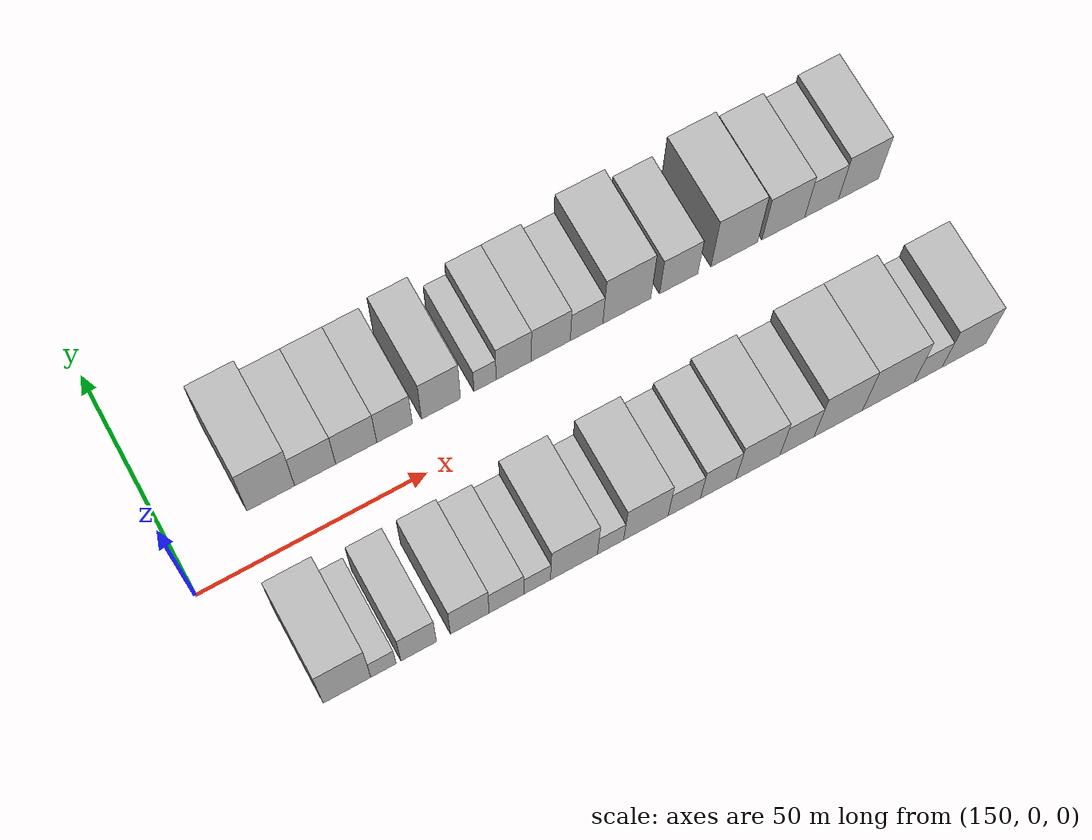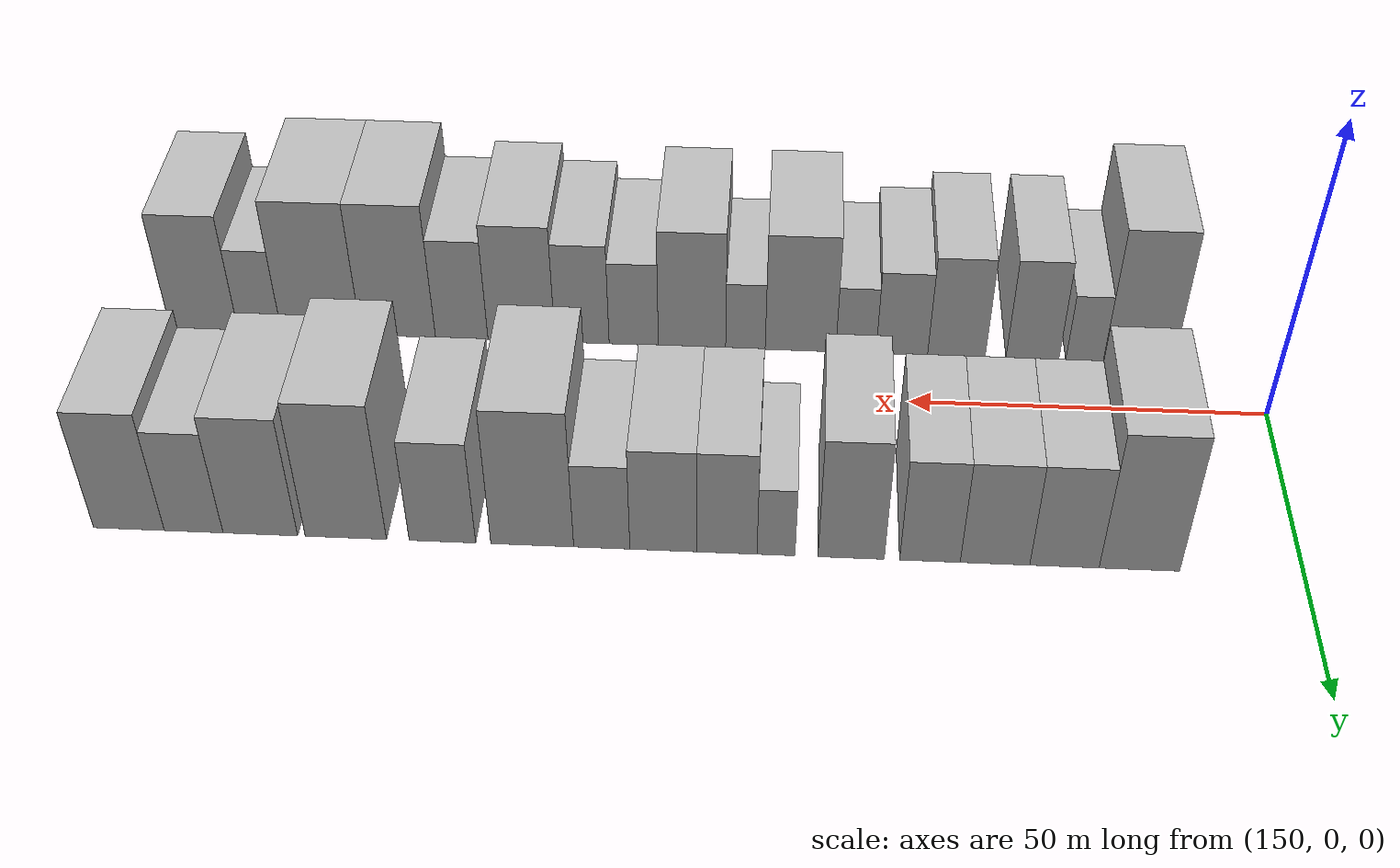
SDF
<sdf version="1.6">
 <world name="default">
  <model name="building_16">
   <static>1</static>
   <pose>171.1718 20.0000 0 0.000000 0.000000 1.570796</pose>
   <link name="link">
    <pose>0 0 12.00 0 0 0</pose>
    <collision name="collision"><geometry><box><size>20.0000 10.3281 24.0000</size></box></geometry></collision>
    <visual name="visual">
     <cast_shadows>0</cast_shadows>
     <geometry><box><size>20.0000 10.3281 24.0000</size></box></geometry>
     <material>
      <script>
       <uri>model://HANNAS_wall/materials/scripts</uri>
       <uri>model://HANNAS_wall/materials/textures</uri>
       <name>vrc/HANNAS_wall</name>
      </script>
     </material>
    </visual>
   </link>
  </model>
  <model name="building_17">
   <static>1</static>
   <pose>180.7952 20.0000 0 0.000000 0.000000 1.570796</pose>
   <link name="link">
    <pose>0 0 9.00 0 0 0</pose>
    <collision name="collision"><geometry><box><size>20.0000 8.9186 18.0000</size></box></geometry></collision>
    <visual name="visual">
     <cast_shadows>0</cast_shadows>
     <geometry><box><size>20.0000 8.9186 18.0000</size></box></geometry>
     <material>
      <script>
       <uri>model://HANNAS_wall/materials/scripts</uri>
       <uri>model://HANNAS_wall/materials/textures</uri>
       <name>vrc/HANNAS_wall</name>
      </script>
     </material>
    </visual>
   </link>
  </model>
  <model name="building_18">
   <static>1</static>
   <pose>189.7408 20.0000 0 0.000000 0.000000 1.570796</pose>
   <link name="link">
    <pose>0 0 9.00 0 0 0</pose>
    <collision name="collision"><geometry><box><size>20.0000 8.9726 18.0000</size></box></geometry></collision>
    <visual name="visual">
     <cast_shadows>0</cast_shadows>
     <geometry><box><size>20.0000 8.9726 18.0000</size></box></geometry>
     <material>
      <script>
       <uri>model://HANNAS_wall/materials/scripts</uri>
       <uri>model://HANNAS_wall/materials/textures</uri>
       <name>vrc/HANNAS_wall</name>
      </script>
     </material>
    </visual>
   </link>
  </model>
  <model name="building_19">
   <static>1</static>
   <pose>198.1437 20.0000 0 0.000000 0.000000 1.570796</pose>
   <link name="link">
    <pose>0 0 9.00 0 0 0</pose>
    <collision name="collision"><geometry><box><size>20.0000 7.8333 18.0000</size></box></geometry></collision>
    <visual name="visual">
     <cast_shadows>0</cast_shadows>
     <geometry><box><size>20.0000 7.8333 18.0000</size></box></geometry>
     <material>
      <script>
       <uri>model://HANNAS_wall/materials/scripts</uri>
       <uri>model://HANNAS_wall/materials/textures</uri>
       <name>vrc/HANNAS_wall</name>
      </script>
     </material>
    </visual>
   </link>
  </model>
  <model name="building_20">
   <static>1</static>
   <pose>208.3549 20.0000 0 0.000000 0.000000 1.570796</pose>
   <link name="link">
    <pose>0 0 10.50 0 0 0</pose>
    <collision name="collision"><geometry><box><size>20.0000 8.5891 21.0000</size></box></geometry></collision>
    <visual name="visual">
     <cast_shadows>0</cast_shadows>
     <geometry><box><size>20.0000 8.5891 21.0000</size></box></geometry>
     <material>
      <script>
       <uri>model://HANNAS_wall/materials/scripts</uri>
       <uri>model://HANNAS_wall/materials/textures</uri>
       <name>vrc/HANNAS_wall</name>
      </script>
     </material>
    </visual>
   </link>
  </model>
  <model name="building_21">
   <static>1</static>
   <pose>218.1163 20.0000 0 0.000000 0.000000 1.570796</pose>
   <link name="link">
    <pose>0 0 6.00 0 0 0</pose>
    <collision name="collision"><geometry><box><size>20.0000 4.9337 12.0000</size></box></geometry></collision>
    <visual name="visual">
     <cast_shadows>0</cast_shadows>
     <geometry><box><size>20.0000 4.9337 12.0000</size></box></geometry>
     <material>
      <script>
       <uri>model://HANNAS_wall/materials/scripts</uri>
       <uri>model://HANNAS_wall/materials/textures</uri>
       <name>vrc/HANNAS_wall</name>
      </script>
     </material>
    </visual>
   </link>
  </model>
  <model name="building_22">
   <static>1</static>
   <pose>224.5152 20.0000 0 0.000000 0.000000 1.570796</pose>
   <link name="link">
    <pose>0 0 9.00 0 0 0</pose>
    <collision name="collision"><geometry><box><size>20.0000 7.8642 18.0000</size></box></geometry></collision>
    <visual name="visual">
     <cast_shadows>0</cast_shadows>
     <geometry><box><size>20.0000 7.8642 18.0000</size></box></geometry>
     <material>
      <script>
       <uri>model://HANNAS_wall/materials/scripts</uri>
       <uri>model://HANNAS_wall/materials/textures</uri>
       <name>vrc/HANNAS_wall</name>
      </script>
     </material>
    </visual>
   </link>
  </model>
  <model name="building_23">
   <static>1</static>
   <pose>232.8145 20.0000 0 0.000000 0.000000 1.570796</pose>
   <link name="link">
    <pose>0 0 9.00 0 0 0</pose>
    <collision name="collision"><geometry><box><size>20.0000 8.7344 18.0000</size></box></geometry></collision>
    <visual name="visual">
     <cast_shadows>0</cast_shadows>
     <geometry><box><size>20.0000 8.7344 18.0000</size></box></geometry>
     <material>
      <script>
       <uri>model://HANNAS_wall/materials/scripts</uri>
       <uri>model://HANNAS_wall/materials/textures</uri>
       <name>vrc/HANNAS_wall</name>
      </script>
     </material>
    </visual>
   </link>
  </model>
  <model name="building_24">
   <static>1</static>
   <pose>240.8632 20.0000 0 0.000000 0.000000 1.570796</pose>
   <link name="link">
    <pose>0 0 7.50 0 0 0</pose>
    <collision name="collision"><geometry><box><size>20.0000 7.3629 15.0000</size></box></geometry></collision>
    <visual name="visual">
     <cast_shadows>0</cast_shadows>
     <geometry><box><size>20.0000 7.3629 15.0000</size></box></geometry>
     <material>
      <script>
       <uri>model://HANNAS_wall/materials/scripts</uri>
       <uri>model://HANNAS_wall/materials/textures</uri>
       <name>vrc/HANNAS_wall</name>
      </script>
     </material>
    </visual>
   </link>
  </model>
  <model name="building_25">
   <static>1</static>
   <pose>249.9842 20.0000 0 0.000000 0.000000 1.570796</pose>
   <link name="link">
    <pose>0 0 12.00 0 0 0</pose>
    <collision name="collision"><geometry><box><size>20.0000 10.8793 24.0000</size></box></geometry></collision>
    <visual name="visual">
     <cast_shadows>0</cast_shadows>
     <geometry><box><size>20.0000 10.8793 24.0000</size></box></geometry>
     <material>
      <script>
       <uri>model://HANNAS_wall/materials/scripts</uri>
       <uri>model://HANNAS_wall/materials/textures</uri>
       <name>vrc/HANNAS_wall</name>
      </script>
     </material>
    </visual>
   </link>
  </model>
  <model name="building_26">
   <static>1</static>
   <pose>261.8048 20.0000 0 0.000000 0.000000 1.570796</pose>
   <link name="link">
    <pose>0 0 9.00 0 0 0</pose>
    <collision name="collision"><geometry><box><size>20.0000 8.7619 18.0000</size></box></geometry></collision>
    <visual name="visual">
     <cast_shadows>0</cast_shadows>
     <geometry><box><size>20.0000 8.7619 18.0000</size></box></geometry>
     <material>
      <script>
       <uri>model://HANNAS_wall/materials/scripts</uri>
       <uri>model://HANNAS_wall/materials/textures</uri>
       <name>vrc/HANNAS_wall</name>
      </script>
     </material>
    </visual>
   </link>
  </model>
  <model name="building_27">
   <static>1</static>
   <pose>274.5712 20.0000 0 0.000000 0.000000 1.570796</pose>
   <link name="link">
    <pose>0 0 12.00 0 0 0</pose>
    <collision name="collision"><geometry><box><size>20.0000 10.7709 24.0000</size></box></geometry></collision>
    <visual name="visual">
     <cast_shadows>0</cast_shadows>
     <geometry><box><size>20.0000 10.7709 24.0000</size></box></geometry>
     <material>
      <script>
       <uri>model://HANNAS_wall/materials/scripts</uri>
       <uri>model://HANNAS_wall/materials/textures</uri>
       <name>vrc/HANNAS_wall</name>
      </script>
     </material>
    </visual>
   </link>
  </model>
  <model name="building_28">
   <static>1</static>
   <pose>285.9206 20.0000 0 0.000000 0.000000 1.570796</pose>
   <link name="link">
    <pose>0 0 10.50 0 0 0</pose>
    <collision name="collision"><geometry><box><size>20.0000 9.9280 21.0000</size></box></geometry></collision>
    <visual name="visual">
     <cast_shadows>0</cast_shadows>
     <geometry><box><size>20.0000 9.9280 21.0000</size></box></geometry>
     <material>
      <script>
       <uri>model://HANNAS_wall/materials/scripts</uri>
       <uri>model://HANNAS_wall/materials/textures</uri>
       <name>vrc/HANNAS_wall</name>
      </script>
     </material>
    </visual>
   </link>
  </model>
  <model name="building_29">
   <static>1</static>
   <pose>294.7935 20.0000 0 0.000000 0.000000 1.570796</pose>
   <link name="link">
    <pose>0 0 9.00 0 0 0</pose>
    <collision name="collision"><geometry><box><size>20.0000 7.8178 18.0000</size></box></geometry></collision>
    <visual name="visual">
     <cast_shadows>0</cast_shadows>
     <geometry><box><size>20.0000 7.8178 18.0000</size></box></geometry>
     <material>
      <script>
       <uri>model://HANNAS_wall/materials/scripts</uri>
       <uri>model://HANNAS_wall/materials/textures</uri>
       <name>vrc/HANNAS_wall</name>
      </script>
     </material>
    </visual>
   </link>
  </model>
  <model name="building_30">
   <static>1</static>
   <pose>303.4305 20.0000 0 0.000000 0.000000 1.570796</pose>
   <link name="link">
    <pose>0 0 10.50 0 0 0</pose>
    <collision name="collision"><geometry><box><size>20.0000 9.4562 21.0000</size></box></geometry></collision>
    <visual name="visual">
     <cast_shadows>0</cast_shadows>
     <geometry><box><size>20.0000 9.4562 21.0000</size></box></geometry>
     <material>
      <script>
       <uri>model://HANNAS_wall/materials/scripts</uri>
       <uri>model://HANNAS_wall/materials/textures</uri>
       <name>vrc/HANNAS_wall</name>
      </script>
     </material>
    </visual>
   </link>
  </model>
  <model name="building_46">
   <static>1</static>
   <pose>166.7558 -20.0000 0 0.000000 0.000000 1.570796</pose>
   <link name="link">
    <pose>0 0 12.00 0 0 0</pose>
    <collision name="collision"><geometry><box><size>20.0000 10.0789 24.0000</size></box></geometry></collision>
    <visual name="visual">
     <cast_shadows>0</cast_shadows>
     <geometry><box><size>20.0000 10.0789 24.0000</size></box></geometry>
     <material>
      <script>
       <uri>model://HANNAS_wall/materials/scripts</uri>
       <uri>model://HANNAS_wall/materials/textures</uri>
       <name>vrc/HANNAS_wall</name>
      </script>
     </material>
    </visual>
   </link>
  </model>
  <model name="building_47">
   <static>1</static>
   <pose>174.4855 -20.0000 0 0.000000 0.000000 1.570796</pose>
   <link name="link">
    <pose>0 0 6.00 0 0 0</pose>
    <collision name="collision"><geometry><box><size>20.0000 5.3806 12.0000</size></box></geometry></collision>
    <visual name="visual">
     <cast_shadows>0</cast_shadows>
     <geometry><box><size>20.0000 5.3806 12.0000</size></box></geometry>
     <material>
      <script>
       <uri>model://HANNAS_wall/materials/scripts</uri>
       <uri>model://HANNAS_wall/materials/textures</uri>
       <name>vrc/HANNAS_wall</name>
      </script>
     </material>
    </visual>
   </link>
  </model>
  <model name="building_48">
   <static>1</static>
   <pose>181.9816 -20.0000 0 0.000000 0.000000 1.570796</pose>
   <link name="link">
    <pose>0 0 9.00 0 0 0</pose>
    <collision name="collision"><geometry><box><size>20.0000 7.6115 18.0000</size></box></geometry></collision>
    <visual name="visual">
     <cast_shadows>0</cast_shadows>
     <geometry><box><size>20.0000 7.6115 18.0000</size></box></geometry>
     <material>
      <script>
       <uri>model://HANNAS_wall/materials/scripts</uri>
       <uri>model://HANNAS_wall/materials/textures</uri>
       <name>vrc/HANNAS_wall</name>
      </script>
     </material>
    </visual>
   </link>
  </model>
  <model name="building_49">
   <static>1</static>
   <pose>192.9435 -20.0000 0 0.000000 0.000000 1.570796</pose>
   <link name="link">
    <pose>0 0 9.00 0 0 0</pose>
    <collision name="collision"><geometry><box><size>20.0000 8.3123 18.0000</size></box></geometry></collision>
    <visual name="visual">
     <cast_shadows>0</cast_shadows>
     <geometry><box><size>20.0000 8.3123 18.0000</size></box></geometry>
     <material>
      <script>
       <uri>model://HANNAS_wall/materials/scripts</uri>
       <uri>model://HANNAS_wall/materials/textures</uri>
       <name>vrc/HANNAS_wall</name>
      </script>
     </material>
    </visual>
   </link>
  </model>
  <model name="building_50">
   <static>1</static>
   <pose>200.8339 -20.0000 0 0.000000 0.000000 1.570796</pose>
   <link name="link">
    <pose>0 0 7.50 0 0 0</pose>
    <collision name="collision"><geometry><box><size>20.0000 7.4687 15.0000</size></box></geometry></collision>
    <visual name="visual">
     <cast_shadows>0</cast_shadows>
     <geometry><box><size>20.0000 7.4687 15.0000</size></box></geometry>
     <material>
      <script>
       <uri>model://HANNAS_wall/materials/scripts</uri>
       <uri>model://HANNAS_wall/materials/textures</uri>
       <name>vrc/HANNAS_wall</name>
      </script>
     </material>
    </visual>
   </link>
  </model>
  <model name="building_51">
   <static>1</static>
   <pose>207.4762 -20.0000 0 0.000000 0.000000 1.570796</pose>
   <link name="link">
    <pose>0 0 6.00 0 0 0</pose>
    <collision name="collision"><geometry><box><size>20.0000 5.8159 12.0000</size></box></geometry></collision>
    <visual name="visual">
     <cast_shadows>0</cast_shadows>
     <geometry><box><size>20.0000 5.8159 12.0000</size></box></geometry>
     <material>
      <script>
       <uri>model://HANNAS_wall/materials/scripts</uri>
       <uri>model://HANNAS_wall/materials/textures</uri>
       <name>vrc/HANNAS_wall</name>
      </script>
     </material>
    </visual>
   </link>
  </model>
  <model name="building_52">
   <static>1</static>
   <pose>215.5154 -20.0000 0 0.000000 0.000000 1.570796</pose>
   <link name="link">
    <pose>0 0 10.50 0 0 0</pose>
    <collision name="collision"><geometry><box><size>20.0000 10.2626 21.0000</size></box></geometry></collision>
    <visual name="visual">
     <cast_shadows>0</cast_shadows>
     <geometry><box><size>20.0000 10.2626 21.0000</size></box></geometry>
     <material>
      <script>
       <uri>model://HANNAS_wall/materials/scripts</uri>
       <uri>model://HANNAS_wall/materials/textures</uri>
       <name>vrc/HANNAS_wall</name>
      </script>
     </material>
    </visual>
   </link>
  </model>
  <model name="building_53">
   <static>1</static>
   <pose>223.5206 -20.0000 0 0.000000 0.000000 1.570796</pose>
   <link name="link">
    <pose>0 0 6.00 0 0 0</pose>
    <collision name="collision"><geometry><box><size>20.0000 5.7479 12.0000</size></box></geometry></collision>
    <visual name="visual">
     <cast_shadows>0</cast_shadows>
     <geometry><box><size>20.0000 5.7479 12.0000</size></box></geometry>
     <material>
      <script>
       <uri>model://HANNAS_wall/materials/scripts</uri>
       <uri>model://HANNAS_wall/materials/textures</uri>
       <name>vrc/HANNAS_wall</name>
      </script>
     </material>
    </visual>
   </link>
  </model>
  <model name="building_54">
   <static>1</static>
   <pose>231.3027 -20.0000 0 0.000000 0.000000 1.570796</pose>
   <link name="link">
    <pose>0 0 10.50 0 0 0</pose>
    <collision name="collision"><geometry><box><size>20.0000 9.8162 21.0000</size></box></geometry></collision>
    <visual name="visual">
     <cast_shadows>0</cast_shadows>
     <geometry><box><size>20.0000 9.8162 21.0000</size></box></geometry>
     <material>
      <script>
       <uri>model://HANNAS_wall/materials/scripts</uri>
       <uri>model://HANNAS_wall/materials/textures</uri>
       <name>vrc/HANNAS_wall</name>
      </script>
     </material>
    </visual>
   </link>
  </model>
  <model name="building_55">
   <static>1</static>
   <pose>239.8067 -20.0000 0 0.000000 0.000000 1.570796</pose>
   <link name="link">
    <pose>0 0 7.50 0 0 0</pose>
    <collision name="collision"><geometry><box><size>20.0000 7.1918 15.0000</size></box></geometry></collision>
    <visual name="visual">
     <cast_shadows>0</cast_shadows>
     <geometry><box><size>20.0000 7.1918 15.0000</size></box></geometry>
     <material>
      <script>
       <uri>model://HANNAS_wall/materials/scripts</uri>
       <uri>model://HANNAS_wall/materials/textures</uri>
       <name>vrc/HANNAS_wall</name>
      </script>
     </material>
    </visual>
   </link>
  </model>
  <model name="building_56">
   <static>1</static>
   <pose>247.3651 -20.0000 0 0.000000 0.000000 1.570796</pose>
   <link name="link">
    <pose>0 0 9.00 0 0 0</pose>
    <collision name="collision"><geometry><box><size>20.0000 7.9251 18.0000</size></box></geometry></collision>
    <visual name="visual">
     <cast_shadows>0</cast_shadows>
     <geometry><box><size>20.0000 7.9251 18.0000</size></box></geometry>
     <material>
      <script>
       <uri>model://HANNAS_wall/materials/scripts</uri>
       <uri>model://HANNAS_wall/materials/textures</uri>
       <name>vrc/HANNAS_wall</name>
      </script>
     </material>
    </visual>
   </link>
  </model>
  <model name="building_57">
   <static>1</static>
   <pose>256.2565 -20.0000 0 0.000000 0.000000 1.570796</pose>
   <link name="link">
    <pose>0 0 10.50 0 0 0</pose>
    <collision name="collision"><geometry><box><size>20.0000 9.8577 21.0000</size></box></geometry></collision>
    <visual name="visual">
     <cast_shadows>0</cast_shadows>
     <geometry><box><size>20.0000 9.8577 21.0000</size></box></geometry>
     <material>
      <script>
       <uri>model://HANNAS_wall/materials/scripts</uri>
       <uri>model://HANNAS_wall/materials/textures</uri>
       <name>vrc/HANNAS_wall</name>
      </script>
     </material>
    </visual>
   </link>
  </model>
  <model name="building_58">
   <static>1</static>
   <pose>265.0481 -20.0000 0 0.000000 0.000000 1.570796</pose>
   <link name="link">
    <pose>0 0 9.00 0 0 0</pose>
    <collision name="collision"><geometry><box><size>20.0000 7.7253 18.0000</size></box></geometry></collision>
    <visual name="visual">
     <cast_shadows>0</cast_shadows>
     <geometry><box><size>20.0000 7.7253 18.0000</size></box></geometry>
     <material>
      <script>
       <uri>model://HANNAS_wall/materials/scripts</uri>
       <uri>model://HANNAS_wall/materials/textures</uri>
       <name>vrc/HANNAS_wall</name>
      </script>
     </material>
    </visual>
   </link>
  </model>
  <model name="building_59">
   <static>1</static>
   <pose>274.4085 -20.0000 0 0.000000 0.000000 1.570796</pose>
   <link name="link">
    <pose>0 0 12.00 0 0 0</pose>
    <collision name="collision"><geometry><box><size>20.0000 10.9956 24.0000</size></box></geometry></collision>
    <visual name="visual">
     <cast_shadows>0</cast_shadows>
     <geometry><box><size>20.0000 10.9956 24.0000</size></box></geometry>
     <material>
      <script>
       <uri>model://HANNAS_wall/materials/scripts</uri>
       <uri>model://HANNAS_wall/materials/textures</uri>
       <name>vrc/HANNAS_wall</name>
      </script>
     </material>
    </visual>
   </link>
  </model>
  <model name="building_60">
   <static>1</static>
   <pose>285.8106 -20.0000 0 0.000000 0.000000 1.570796</pose>
   <link name="link">
    <pose>0 0 12.00 0 0 0</pose>
    <collision name="collision"><geometry><box><size>20.0000 11.8087 24.0000</size></box></geometry></collision>
    <visual name="visual">
     <cast_shadows>0</cast_shadows>
     <geometry><box><size>20.0000 11.8087 24.0000</size></box></geometry>
     <material>
      <script>
       <uri>model://HANNAS_wall/materials/scripts</uri>
       <uri>model://HANNAS_wall/materials/textures</uri>
       <name>vrc/HANNAS_wall</name>
      </script>
     </material>
    </visual>
   </link>
  </model>
  <model name="building_61">
   <static>1</static>
   <pose>294.9282 -20.0000 0 0.000000 0.000000 1.570796</pose>
   <link name="link">
    <pose>0 0 7.50 0 0 0</pose>
    <collision name="collision"><geometry><box><size>20.0000 6.4265 15.0000</size></box></geometry></collision>
    <visual name="visual">
     <cast_shadows>0</cast_shadows>
     <geometry><box><size>20.0000 6.4265 15.0000</size></box></geometry>
     <material>
      <script>
       <uri>model://HANNAS_wall/materials/scripts</uri>
       <uri>model://HANNAS_wall/materials/textures</uri>
       <name>vrc/HANNAS_wall</name>
      </script>
     </material>
    </visual>
   </link>
  </model>
  <model name="building_62">
   <static>1</static>
   <pose>303.2025 -20.0000 0 0.000000 0.000000 1.570796</pose>
   <link name="link">
    <pose>0 0 10.50 0 0 0</pose>
    <collision name="collision"><geometry><box><size>20.0000 10.1220 21.0000</size></box></geometry></collision>
    <visual name="visual">
     <cast_shadows>0</cast_shadows>
     <geometry><box><size>20.0000 10.1220 21.0000</size></box></geometry>
     <material>
      <script>
       <uri>model://HANNAS_wall/materials/scripts</uri>
       <uri>model://HANNAS_wall/materials/textures</uri>
       <name>vrc/HANNAS_wall</name>
      </script>
     </material>
    </visual>
   </link>
  </model>
 </world>
</sdf>
